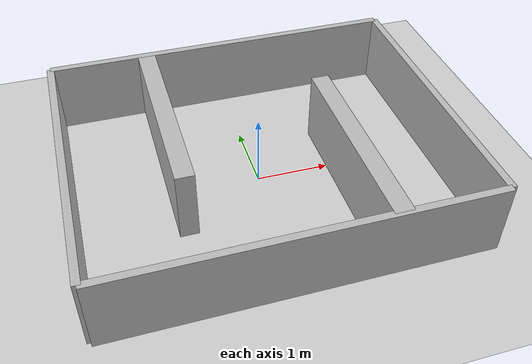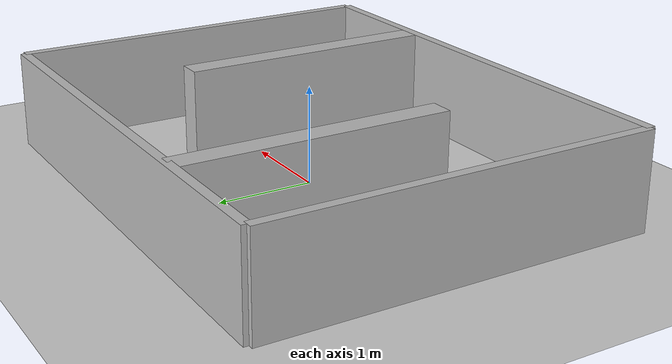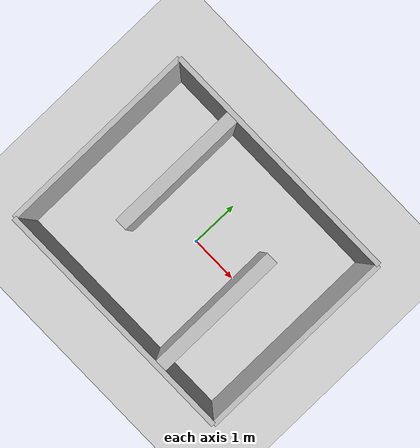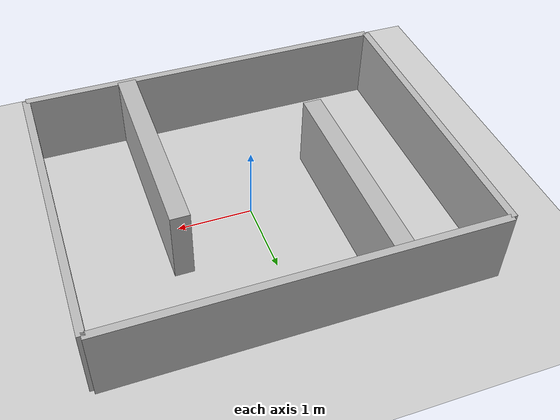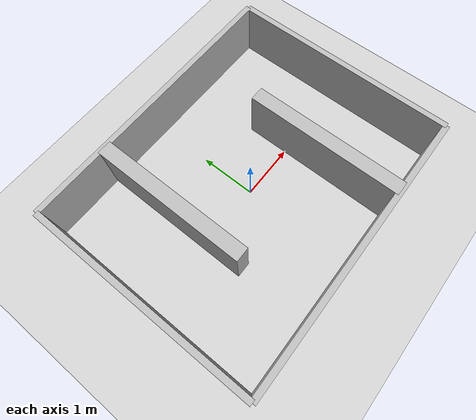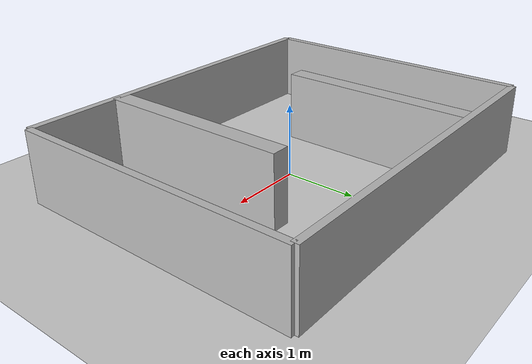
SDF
<?xml version="1.0" ?>
<sdf version="1.6">
  <world name="bodega_zigzag">
    <include><uri>model://sun</uri></include>
    <include><uri>model://ground_plane</uri></include>

    <model name="perimetro">
      <static>true</static>
      <link name="norte">
        <pose>0 2.0 0.5 0 0 0</pose>
        <collision name="c"><geometry><box><size>5.0 0.1 1.0</size></box></geometry></collision>
        <visual name="v"><geometry><box><size>5.0 0.1 1.0</size></box></geometry></visual>
      </link>
      <link name="sur">
        <pose>0 -2.0 0.5 0 0 0</pose>
        <collision name="c"><geometry><box><size>5.0 0.1 1.0</size></box></geometry></collision>
        <visual name="v"><geometry><box><size>5.0 0.1 1.0</size></box></geometry></visual>
      </link>
      <link name="oeste">
        <pose>-2.5 0 0.5 0 0 0</pose>
        <collision name="c"><geometry><box><size>0.1 4.0 1.0</size></box></geometry></collision>
        <visual name="v"><geometry><box><size>0.1 4.0 1.0</size></box></geometry></visual>
      </link>
      <link name="este">
        <pose>2.5 0 0.5 0 0 0</pose>
        <collision name="c"><geometry><box><size>0.1 4.0 1.0</size></box></geometry></collision>
        <visual name="v"><geometry><box><size>0.1 4.0 1.0</size></box></geometry></visual>
      </link>
    </model>

    <model name="muros_internos">
      <static>true</static>
      <link name="interno_izq">
        <pose>-1.125 0.625 0.5 0 0 0</pose>
        <collision name="c"><geometry><box><size>0.25 2.75 1.0</size></box></geometry></collision>
        <visual name="v"><geometry><box><size>0.25 2.75 1.0</size></box></geometry></visual>
      </link>
      <link name="interno_der">
        <pose>1.125 -0.625 0.5 0 0 0</pose>
        <collision name="c"><geometry><box><size>0.25 2.75 1.0</size></box></geometry></collision>
        <visual name="v"><geometry><box><size>0.25 2.75 1.0</size></box></geometry></visual>
      </link>
    </model>
  </world>
</sdf>
